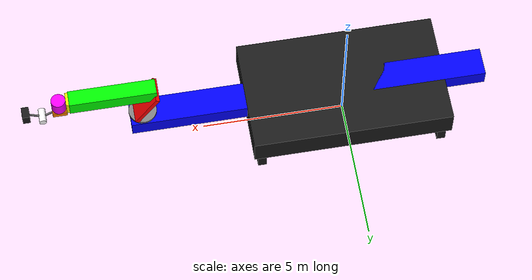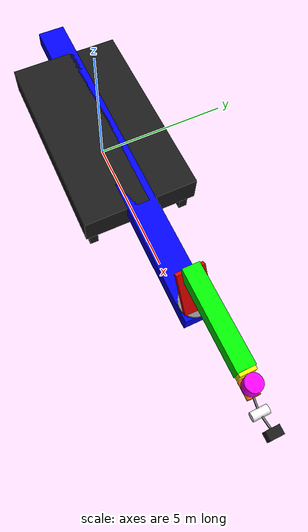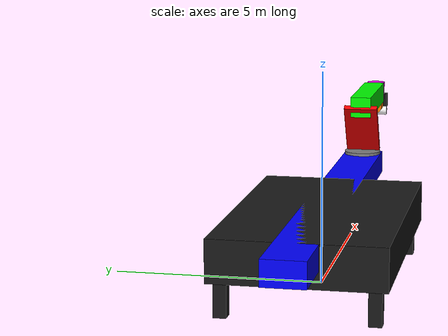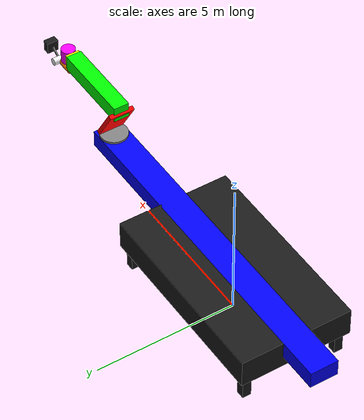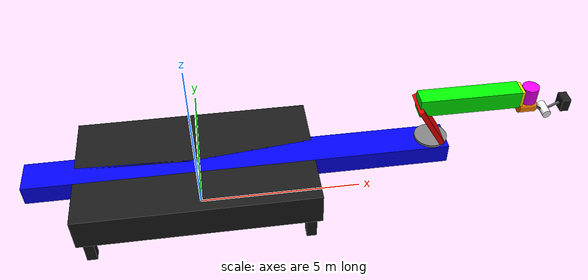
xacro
<?xml version="1.0"?>
<robot xmlns:xacro="http://www.ros.org/wiki/xacro" name="mill_relining_robot">
    <xacro:arg name="initial_positions_file" default="initial_positions.yaml" />

    <!-- Import mill_relining_robot urdf file -->
    <xacro:include filename="$(find ROS2_MRM)/urdf/mill_relining_robot.urdf.xacro" />

    <!-- Import control_xacro -->
    <xacro:include filename="mill_relining_robot.ros2_control.xacro" />

</robot>

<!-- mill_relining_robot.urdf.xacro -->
<robot xmlns:xacro="http://www.ros.org/wiki/xacro" name="mill_relining_robot">

  <!-- ===================== XACRO PROPERTIES ===================== -->

  <!-- Base dimensions -->
  <xacro:property name="base_length" value="7.0" />
  <xacro:property name="base_width" value="4.0" />
  <xacro:property name="base_height" value="1.0" />
  <xacro:property name="base_mass" value="20" />

  <!-- Leg properties -->
  <xacro:property name="leg_width" value="0.3" />    <!-- leg box width (X direction) -->
  <xacro:property name="leg_depth" value="0.3" />    <!-- leg box depth (Y direction) -->
  <xacro:property name="leg_height" value="0.8" />    <!-- leg box height (Z direction) -->
  <xacro:property name="leg_mass" value="2.0" />

  <!-- Leg positioning - flush with base corners -->
  <!-- These position the leg centers at the base corners -->
  <xacro:property name="leg_offset_x" value="${(base_length/2) - (leg_width)}" />   <!-- X offset from base center -->
  <xacro:property name="leg_offset_y" value="${(base_width/2) - (leg_depth)}" />    <!-- Y offset from base center -->

  <!-- Horizontal beam properties -->
  <xacro:property name="beam_length" value="12.5" />
  <xacro:property name="beam_width" value="1.0" />
  <xacro:property name="beam_height" value="0.6" />
  <xacro:property name="beam_mass" value="15" />
  <xacro:property name="beam_slide_range" value="5.5" />
  <xacro:property name="beam_slide_velocity" value="0.5" />
  <xacro:property name="beam_slide_effort" value="200" />

  <!-- Turntable properties -->
  <xacro:property name="turntable_radius" value="0.49" />
  <xacro:property name="turntable_height" value="0.08" />
  <xacro:property name="turntable_mass" value="5" />
  <xacro:property name="turntable_effort" value="100" />
  <xacro:property name="turntable_velocity" value="2" />

  <!-- Vertical link properties -->
  <xacro:property name="vertical_width" value="0.15" />
  <xacro:property name="vertical_depth" value="0.9" />
  <xacro:property name="vertical_height" value="1.5" />
  <xacro:property name="vertical_mass" value="8" />

  <!-- Boom outer properties -->
  <xacro:property name="boom_outer_width" value="0.55" />
  <xacro:property name="boom_outer_depth" value="0.55" />
  <xacro:property name="boom_outer_height" value="3.0" />
  <xacro:property name="boom_outer_mass" value="5" />
  <xacro:property name="boompitch_effort" value="80" />
  <xacro:property name="boompitch_velocity" value="2" />
  <xacro:property name="boompitch_range" value="1.57" />

  <!-- Boom inner extension properties -->
  <xacro:property name="boom_inner_width" value="0.5" />
  <xacro:property name="boom_inner_depth" value="0.5" />
  <xacro:property name="boom_inner_length" value="3.0" />
  <xacro:property name="boom_inner_mass" value="3" />
  <xacro:property name="boom_inner_range" value="2.7" />
  <xacro:property name="boom_inner_velocity" value="1" />
  <xacro:property name="boom_inner_effort" value="50" />

  <!-- Grapple slew -->
  <xacro:property name="grappleslew_radius" value="${boom_inner_width/2}" />
  <xacro:property name="grappleslew_length" value="${boom_inner_width}" />
  <xacro:property name="grappleslew_mass" value="1.5" />
  <xacro:property name="grappleslew_effort" value="30" />
  <xacro:property name="grappleslew_velocity" value="3" />

    <!-- Grapple roll properties -->
  <xacro:property name="grappleroll_radius" value="0.2" />
  <xacro:property name="grappleroll_length" value="0.5" />
  <xacro:property name="grappleroll_mass" value="1" />
  <xacro:property name="grappleroll_effort" value="20" />
  <xacro:property name="grappleroll_velocity" value="3" />
  <xacro:property name="grappleroll_range" value="1.57" />

  <!-- Grapple pitch properties -->
  <xacro:property name="grapplepitch_radius" value="0.125" />
  <xacro:property name="grapplepitch_length" value="0.5" />
  <xacro:property name="grapplepitch_mass" value="0.5" />
  <xacro:property name="grapplepitch_effort" value="15" />
  <xacro:property name="grapplepitch_velocity" value="4" />

  <!-- Grapple properties -->
  <xacro:property name="grapple_length" value="0.25" />
  <xacro:property name="grapple_width" value="0.4" />
  <xacro:property name="grapple_height" value="0.4" />
  <xacro:property name="grapple_mass" value="2.0" />

  <!-- Colors -->
  <xacro:property name="gray_color" value="0.5 0.5 0.5 1" />
  <xacro:property name="blue_color" value="0 0 1 1" />
  <xacro:property name="red_color" value="1 0 0 1" />
  <xacro:property name="green_color" value="0 1 0 1" />
  <xacro:property name="yellow_color" value="1 1 0 1" />
  <xacro:property name="purple_color" value="1 0 1 1" />
  <xacro:property name="orange_color" value="1 0.5 0 1" />
  <xacro:property name="white_color" value="1 1 1 1" />
  <xacro:property name="black_color" value="0.1 0.1 0.1 1" />
  <xacro:property name="dark_gray_color" value="0.3 0.3 0.3 1" />

  <!-- ===================== XACRO MACROS ===================== -->

  <!-- Inertia macros -->
  <xacro:macro name="box_inertia" params="m x y z">
    <inertia ixx="${m*(y*y+z*z)/12}" ixy="0" ixz="0"
             iyy="${m*(x*x+z*z)/12}" iyz="0"
             izz="${m*(x*x+y*y)/12}" />
  </xacro:macro>

  <xacro:macro name="cylinder_inertia" params="m r h">
    <inertia ixx="${m*(3*r*r+h*h)/12}" ixy="0" ixz="0"
             iyy="${m*(3*r*r+h*h)/12}" iyz="0"
             izz="${m*r*r/2}" />
  </xacro:macro>

  <!-- Leg macro for reusability - PROPERLY ALIGNED WITH GROUND -->
  <xacro:macro name="leg" params="name x y">
    <joint name="${name}_joint" type="fixed">
      <parent link="base_link"/>
      <child link="${name}"/>
      <!-- Position leg so it sits on ground (z=0) and extends up to base -->
      <origin xyz="${x} ${y} ${leg_height/2}" rpy="0 0 0"/>
    </joint>

    <link name="${name}">
      <visual>
        <!-- Leg centered at joint origin -->
        <origin xyz="0 0 0" rpy="0 0 0"/>
        <geometry>
          <box size="${leg_width} ${leg_depth} ${leg_height}"/>
        </geometry>
        <xacro:material_black/>
      </visual>
      <collision>
        <origin xyz="0 0 0" rpy="0 0 0"/>
        <geometry>
          <box size="${leg_width} ${leg_depth} ${leg_height}"/>
        </geometry>
      </collision>
      <inertial>
        <origin xyz="0 0 0" rpy="0 0 0"/>
        <mass value="${leg_mass}"/>
        <xacro:box_inertia m="${leg_mass}" x="${leg_width}" y="${leg_depth}" z="${leg_height}"/>
      </inertial>
    </link>
  </xacro:macro>

  <!-- Material definitions -->
  <xacro:macro name="material_gray">
    <material name="gray">
      <color rgba="${gray_color}"/>
    </material>
  </xacro:macro>

  <xacro:macro name="material_blue">
    <material name="blue">
      <color rgba="${blue_color}"/>
    </material>
  </xacro:macro>

  <xacro:macro name="material_red">
    <material name="red">
      <color rgba="${red_color}"/>
    </material>
  </xacro:macro>

  <xacro:macro name="material_green">
    <material name="green">
      <color rgba="${green_color}"/>
    </material>
  </xacro:macro>

  <xacro:macro name="material_yellow">
    <material name="yellow">
      <color rgba="${yellow_color}"/>
    </material>
  </xacro:macro>

  <xacro:macro name="material_purple">
    <material name="purple">
      <color rgba="${purple_color}"/>
    </material>
  </xacro:macro>

  <xacro:macro name="material_orange">
    <material name="orange">
      <color rgba="${orange_color}"/>
    </material>
  </xacro:macro>

  <xacro:macro name="material_white">
    <material name="white">
      <color rgba="${white_color}"/>
    </material>
  </xacro:macro>

  <xacro:macro name="material_black">
    <material name="black">
      <color rgba="${black_color}"/>
    </material>
  </xacro:macro>

  <xacro:macro name="material_dark_gray">
    <material name="dark_gray">
      <color rgba="${dark_gray_color}"/>
    </material>
  </xacro:macro>

  <!-- ===================== ROBOT LINKS AND JOINTS ===================== -->

  <!-- Base Link (coordinate origin at ground level, base frame elevated by legs) -->
  <link name="base_link">
    <visual>
      <!-- Base frame sits on top of legs -->
      <origin xyz="0 0 ${leg_height + base_height/2}" rpy="0 0 0"/>
      <geometry>
        <box size="${base_length} ${base_width} ${base_height}"/>
      </geometry>
      <xacro:material_black />
    </visual>
    <collision>
      <origin xyz="0 0 ${leg_height + base_height/2}" rpy="0 0 0"/>
      <geometry>
        <box size="${base_length} ${base_width} ${base_height}"/>
      </geometry>
    </collision>
    <inertial>
      <origin xyz="0 0 ${leg_height + base_height/2}" rpy="0 0 0"/>
      <mass value="${base_mass}"/>
      <xacro:box_inertia m="${base_mass}" x="${base_length}" y="${base_width}" z="${base_height}"/>
    </inertial>
  </link>

  <!-- Add 4 legs using the macro - positioned at base corners -->
  <xacro:leg name="leg_front_left" x="${leg_offset_x}" y="${leg_offset_y}" />
  <xacro:leg name="leg_front_right" x="${leg_offset_x}" y="-${leg_offset_y}" />
  <xacro:leg name="leg_back_left" x="-${leg_offset_x}" y="${leg_offset_y}" />
  <xacro:leg name="leg_back_right" x="-${leg_offset_x}" y="-${leg_offset_y}" />

  <!-- Beam Joint - Prismatic (sliding beam) -->
  <joint name="beam_joint" type="prismatic">
    <parent link="base_link"/>
    <child link="horizontal_beam"/>
    <!-- Beam sits inline with top of base frame -->
    <origin xyz="0 0 ${leg_height + base_height - (beam_height/2)}" rpy="0 0 0"/>
    <axis xyz="1 0 0"/>
    <limit lower="0" upper="${beam_slide_range}" effort="${beam_slide_effort}" velocity="${beam_slide_velocity}"/>
  </joint>

  <!-- Horizontal Beam -->
  <link name="horizontal_beam">
    <visual>
      <origin xyz="1.3 0 0" rpy="0 0 0"/>
      <geometry>
        <box size="${beam_length} ${beam_width} ${beam_height}"/>
      </geometry>
      <xacro:material_blue />
    </visual>
    <collision>
      <origin xyz="1.3 0 0" rpy="0 0 0"/>
      <geometry>
        <box size="${beam_length} ${beam_width} ${beam_height}"/>
      </geometry>
    </collision>
    <inertial>
      <origin xyz="1.3 0 0" rpy="0 0 0"/>
      <mass value="${beam_mass}"/>
      <xacro:box_inertia m="${beam_mass}" x="${beam_length}" y="${beam_width}" z="${beam_height}"/>
    </inertial>
  </link>

  <!-- Turntable - Revolute joint (the cylinder itself rotates) -->
  <joint name="turn_table" type="revolute">
    <parent link="horizontal_beam"/>
    <child link="turntable_cylinder"/>
    <origin xyz="${(beam_length/2 + 0.85)} 0 ${beam_height/2}" rpy="0 0 0"/>
    <axis xyz="0 0 1"/>
    <limit lower="-3.14159" upper="3.14159" effort="${turntable_effort}" velocity="${turntable_velocity}"/>
  </joint>

  <!-- Turntable Cylinder (this rotates) -->
  <link name="turntable_cylinder">
    <visual>
      <origin xyz="0 0 ${turntable_height/2}" rpy="0 0 0"/>
      <geometry>
        <cylinder radius="${turntable_radius}" length="${turntable_height}"/>
      </geometry>
      <xacro:material_gray />
    </visual>
    <collision>
      <origin xyz="0 0 ${turntable_height/2}" rpy="0 0 0"/>
      <geometry>
        <cylinder radius="${turntable_radius}" length="${turntable_height}"/>
      </geometry>
    </collision>
    <inertial>
      <origin xyz="0 0 ${turntable_height/2}" rpy="0 0 0"/>
      <mass value="${turntable_mass}"/>
      <xacro:cylinder_inertia m="${turntable_mass}" r="${turntable_radius}" h="${turntable_height}"/>
    </inertial>
  </link>

  <!-- Vertical Link Mount - Fixed to top of turntable cylinder -->
  <joint name="vertical_mount" type="fixed">
    <parent link="turntable_cylinder"/>
    <child link="vertical_link"/>
    <origin xyz="${turntable_radius/2} 0 ${turntable_height}" rpy="0 -0.54 0"/>
  </joint>

  <!-- Vertical Link (static relative to turntable) -->
  <link name="vertical_link">
    <visual>
      <origin xyz="0 0 ${vertical_height/2}" rpy="0 0 0"/>
      <geometry>
        <box size="${vertical_width} ${vertical_depth} ${vertical_height}"/>
      </geometry>
      <xacro:material_red />
    </visual>
    <collision>
      <origin xyz="0 0 ${vertical_height/2}" rpy="0 0 0"/>
      <geometry>
        <box size="${vertical_width} ${vertical_depth} ${vertical_height}"/>
      </geometry>
    </collision>
    <inertial>
      <origin xyz="0 0 ${vertical_height/2}" rpy="0 0 0"/>
      <mass value="${vertical_mass}"/>
      <xacro:box_inertia m="${vertical_mass}" x="${vertical_width}" y="${vertical_depth}" z="${vertical_height}"/>
    </inertial>
  </link>

  <!-- Boom Pitch - Revolute at top of vertical link -->
  <joint name="boom_pitch" type="revolute">
    <parent link="vertical_link"/>
    <child link="boom_outer_link"/>
    <origin xyz="0 0 ${vertical_height}" rpy="0 0.54 0"/>
    <axis xyz="0 1 0"/>
    <limit lower="-${boompitch_range}" upper="${boompitch_range}" effort="${boompitch_effort}" velocity="${boompitch_velocity}"/>
  </joint>

  <!-- Boom outer (before prismatic) -->
  <link name="boom_outer_link">
    <visual>
      <origin xyz="${boom_outer_height/2} 0 0" rpy="0 1.57 0"/>
      <geometry>
        <box size="${boom_outer_depth} ${boom_outer_width} ${boom_outer_height}"/>
      </geometry>
      <xacro:material_green />
    </visual>
    <collision>
      <origin xyz="${boom_outer_height/2} 0 0" rpy="0 1.57 0"/>
      <geometry>
        <box size="${boom_outer_depth} ${boom_outer_width} ${boom_outer_height}"/>
      </geometry>
    </collision>
    <inertial>
      <origin xyz="${boom_outer_height/2} 0 0" rpy="0 1.57 0"/>
      <mass value="${boom_outer_mass}"/>
      <xacro:box_inertia m="${boom_outer_mass}" x="${boom_outer_depth}" y="${boom_outer_width}" z="${boom_outer_height}"/>
    </inertial>
  </link>

  <!-- Boom inner - Prismatic -->
  <joint name="boom_inner_joint" type="prismatic">
    <parent link="boom_outer_link"/>
    <child link="boom_inner"/>
    <origin xyz="0.1 0 0" rpy="0 0 0"/>
    <axis xyz="1 0 0"/>
    <limit lower="0" upper="${boom_inner_range}" effort="${boom_inner_effort}" velocity="${boom_inner_velocity}"/>
  </joint>

  <!-- Boom Inner (prismatic part) -->
  <link name="boom_inner">
    <visual>
      <origin xyz="${boom_inner_length/2} 0 0" rpy="0 0 0"/>
      <geometry>
        <box size="${boom_inner_length} ${boom_inner_width} ${boom_inner_depth}"/>
      </geometry>
      <xacro:material_yellow />
    </visual>
    <collision>
      <origin xyz="${boom_inner_length/2} 0 0" rpy="0 0 0"/>
      <geometry>
        <box size="${boom_inner_length} ${boom_inner_width} ${boom_inner_depth}"/>
      </geometry>
    </collision>
    <inertial>
      <origin xyz="${boom_inner_length/2} 0 0" rpy="0 0 0"/>
      <mass value="${boom_inner_mass}"/>
      <xacro:box_inertia m="${boom_inner_mass}" x="${boom_inner_length}" y="${boom_inner_width}" z="${boom_inner_depth}"/>
    </inertial>
  </link>

  <!-- Grappleslew Joint - Revolute after prismatic -->
  <joint name="grapple_slew" type="revolute">
    <parent link="boom_inner"/>
    <child link="grapple_slew"/>
    <origin xyz="${boom_inner_length + (grappleslew_radius)} 0 0" rpy="0 0 0"/>
    <axis xyz="0 0 1"/>
    <limit lower="-3.14159" upper="3.14159" effort="${grappleslew_effort}" velocity="${grappleslew_velocity}"/>
  </joint>

  <!-- Grapple Slew Link -->
  <link name="grapple_slew">
    <visual>
      <origin xyz="0 0 0" rpy="0 0 0"/>
      <geometry>
        <cylinder radius="${grappleslew_radius}" length="${grappleslew_length}"/>
      </geometry>
      <xacro:material_purple />
    </visual>
    <collision>
      <origin xyz="0 0 0" rpy="0 0 0"/>
      <geometry>
        <cylinder radius="${grappleslew_radius}" length="${grappleslew_length}"/>
      </geometry>
    </collision>
    <inertial>
      <origin xyz="0 0 0" rpy="0 0 0"/>
      <mass value="${grappleslew_mass}"/>
      <xacro:cylinder_inertia m="${grappleslew_mass}" r="${grappleslew_radius}" h="${grappleslew_length}"/>
    </inertial>
  </link>

  <!-- Grapple Roll Joint - Revolute -->
  <joint name="grapple_roll" type="revolute">
    <parent link="grapple_slew"/>
    <child link="grapple_roll"/>
    <origin xyz="0 0 -${(grappleslew_length/2)+(grappleroll_radius)}" rpy="0 0 0"/>
    <axis xyz="1 0 0"/>
    <limit lower="-${grappleroll_range}" upper="${grappleroll_range}" effort="${grappleroll_effort}" velocity="${grappleroll_velocity}"/>
  </joint>

  <!-- Grapple Roll Link -->
  <link name="grapple_roll">
    <visual>
      <origin xyz="0 0 0" rpy="0 1.57 0"/>
      <geometry>
        <cylinder radius="${grappleroll_radius}" length="${grappleroll_length}"/>
      </geometry>
      <xacro:material_orange />
    </visual>
    <collision>
      <origin xyz="0 0 0" rpy="0 1.57 0"/>
      <geometry>
        <cylinder radius="${grappleroll_radius}" length="${grappleroll_length}"/>
      </geometry>
    </collision>
    <inertial>
      <origin xyz="0 0 0" rpy="0 1.57 0"/>
      <mass value="${grappleroll_mass}"/>
      <xacro:cylinder_inertia m="${grappleroll_mass}" r="${grappleroll_radius}" h="${grappleroll_length}"/>
    </inertial>
  </link>

  <!-- Grapple Pitch Joint - Final Revolute -->
  <joint name="grapple_pitch" type="revolute">
    <parent link="grapple_roll"/>
    <child link="grapple_pitch"/>
    <origin xyz="${grappleroll_length/2 + 0.365} 0 -0.23" rpy="0 0 0"/>
    <axis xyz="0 1 0"/>
    <limit lower="-3.14159" upper="3.14159" effort="${grapplepitch_effort}" velocity="${grapplepitch_velocity}"/>
  </joint>

  <!-- Grapple Pitch Link -->
  <link name="grapple_pitch">
    <visual>
      <origin xyz="0 0 0" rpy="1.57 0 0"/>
      <geometry>
        <cylinder radius="${grapplepitch_radius}" length="${grapplepitch_length}"/>
      </geometry>
      <xacro:material_white />
    </visual>
    <collision>
      <origin xyz="0 0 0" rpy="0 1.57 0"/>
      <geometry>
        <cylinder radius="${grapplepitch_radius}" length="${grapplepitch_length}"/>
      </geometry>
    </collision>
    <inertial>
      <origin xyz="0 0 0" rpy="0 1.57 0"/>
      <mass value="${grapplepitch_mass}"/>
      <xacro:cylinder_inertia m="${grapplepitch_mass}" r="${grapplepitch_radius}" h="${grapplepitch_length}"/>
    </inertial>
  </link>

  <!-- Grapple Joint -->
  <joint name="grapple_joint" type="fixed">
    <parent link="grapple_pitch"/>
    <child link="grapple"/>
    <origin xyz="0.425 0 0.23" rpy="0 0 0"/>
  </joint>

  <!-- Grapple Tool -->
  <link name="grapple">
    <visual>
      <origin xyz="${grapple_length/2} 0 0" rpy="0 0 0"/>
      <geometry>
        <box size="${grapple_length} ${grapple_width} ${grapple_height}"/>
      </geometry>
      <xacro:material_black />
    </visual>
    <collision>
      <origin xyz="${grapple_length/2} 0 0" rpy="0 0 0"/>
      <geometry>
        <box size="${grapple_length} ${grapple_width} ${grapple_height}"/>
      </geometry>
    </collision>
    <inertial>
      <origin xyz="${grapple_length/2} 0 0" rpy="0 0 0"/>
      <mass value="${grapple_mass}"/>
      <xacro:box_inertia m="${grapple_mass}" x="${grapple_length}" y="${grapple_width}" z="${grapple_height}"/>
    </inertial>
  </link>

  <!-- Visual connector properties - calculated from actual joint distances -->
  <xacro:property name="connector_1_length" value="0.46" />   <!-- Distance from grapple_roll to grapple_pitch -->
  <xacro:property name="connector_2_length" value="0.46" />  <!-- Distance from grapple_pitch to grapple -->
  <xacro:property name="connector_width" value="0.05" />
  <xacro:property name="connector_height" value="0.05" />
  <xacro:property name="connector_mass" value="0.1" />

  <!-- Connector 1: Grapple Roll to Grapple Pitch -->
  <joint name="connector_1_joint" type="fixed">
    <parent link="grapple_roll"/>
    <child link="connector_1"/>
    <origin xyz="0.365 0 -0.115" rpy="0 0.5623 0"/>
  </joint>

  <link name="connector_1">
    <visual>
      <origin xyz="0 0 0" rpy="0 0 0"/>
      <geometry>
        <box size="${connector_1_length} ${connector_width} ${connector_height}"/>
      </geometry>
      <xacro:material_gray />
    </visual>
    <collision>
      <origin xyz="0 0 0" rpy="0 0 0"/>
      <geometry>
        <box size="${connector_1_length} ${connector_width} ${connector_height}"/>
      </geometry>
    </collision>
    <inertial>
      <origin xyz="0 0 0" rpy="0 0 0"/>
      <mass value="${connector_mass}"/>
      <xacro:box_inertia m="${connector_mass}" x="${connector_1_length}" y="${connector_width}" z="${connector_height}"/>
    </inertial>
  </link>

  <!-- Connector 2: Grapple Pitch to Grapple -->
  <joint name="connector_2_joint" type="fixed">
    <parent link="grapple_pitch"/>
    <child link="connector_2"/>
    <origin xyz="0.2175 0 0.115" rpy="0 -0.4956 0"/>
  </joint>

  <link name="connector_2">
    <visual>
      <origin xyz="0 0 0" rpy="0 0 0"/>
      <geometry>
        <box size="${connector_2_length} ${connector_width} ${connector_height}"/>
      </geometry>
      <xacro:material_gray />
    </visual>
    <collision>
      <origin xyz="0 0 0" rpy="0 0 0"/>
      <geometry>
        <box size="${connector_2_length} ${connector_width} ${connector_height}"/>
      </geometry>
    </collision>
    <inertial>
      <origin xyz="0 0 0" rpy="0 0 0"/>
      <mass value="${connector_mass}"/>
      <xacro:box_inertia m="${connector_mass}" x="${connector_2_length}" y="${connector_width}" z="${connector_height}"/>
    </inertial>
  </link>

  <!-- ros2_control configuration -->
  <ros2_control name="FakeSystem" type="system">
    <hardware>
      <plugin>mock_components/GenericSystem</plugin>
    </hardware>
    <joint name="beam_joint">
      <command_interface name="position"/>
      <state_interface name="position"/>
      <state_interface name="velocity"/>
    </joint>
    <joint name="turn_table">
      <command_interface name="position"/>
      <state_interface name="position"/>
      <state_interface name="velocity"/>
    </joint>
    <joint name="boom_pitch">
      <command_interface name="position"/>
      <state_interface name="position"/>
      <state_interface name="velocity"/>
    </joint>
    <joint name="boom_inner_joint">
      <command_interface name="position"/>
      <state_interface name="position"/>
      <state_interface name="velocity"/>
    </joint>
    <joint name="grapple_slew">
      <command_interface name="position"/>
      <state_interface name="position"/>
      <state_interface name="velocity"/>
    </joint>
    <joint name="grapple_roll">
      <command_interface name="position"/>
      <state_interface name="position"/>
      <state_interface name="velocity"/>
    </joint>
    <joint name="grapple_pitch">
      <command_interface name="position"/>
      <state_interface name="position"/>
      <state_interface name="velocity"/>
    </joint>
  </ros2_control>

</robot>
